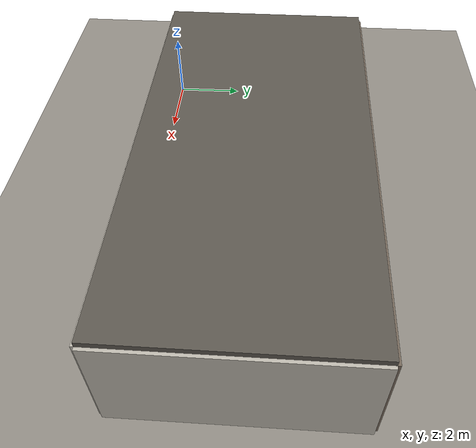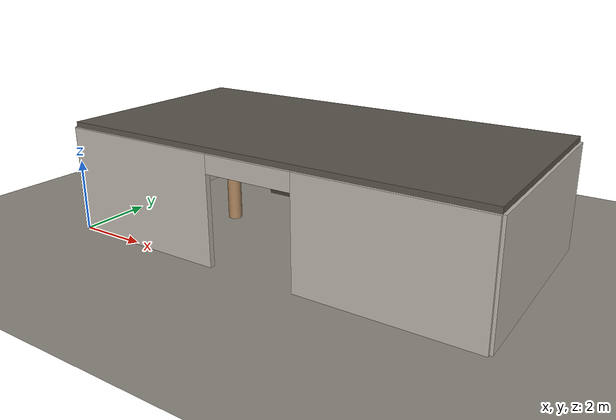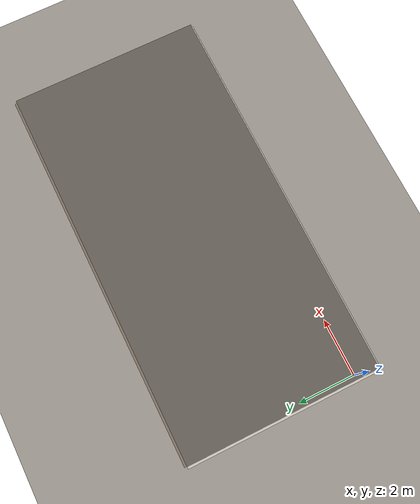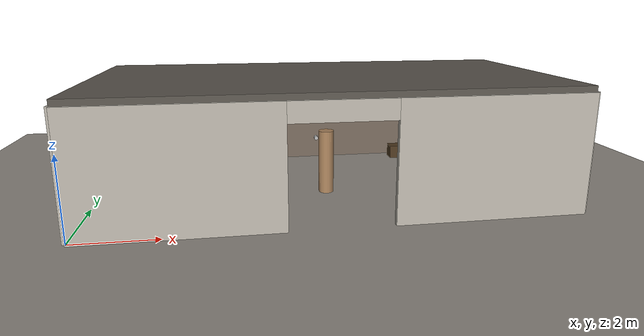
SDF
<?xml version="1.0" ?>
<sdf version="1.9">
  <world name="sherpa_fire_test">

    <!-- ===================== 필수 플러그인 ===================== -->

    <!-- 물리 엔진 -->
    <plugin filename="gz-sim-physics-system"
            name="gz::sim::systems::Physics"/>

    <!-- 사용자 명령 (GUI 드래그, 스폰 등) -->
    <plugin filename="gz-sim-user-commands-system"
            name="gz::sim::systems::UserCommands"/>

    <!-- 씬 브로드캐스터 (ROS 2 bridge용) -->
    <plugin filename="gz-sim-scene-broadcaster-system"
            name="gz::sim::systems::SceneBroadcaster"/>

    <!-- 센서 시스템 (열화상·카메라·라이다) -->
    <plugin filename="gz-sim-sensors-system"
            name="gz::sim::systems::Sensors">
      <render_engine>ogre2</render_engine>
    </plugin>

    <!-- 충돌 감지 -->
    <plugin filename="gz-sim-contact-system"
            name="gz::sim::systems::Contact"/>

    <!-- IMU 시스템 -->
    <plugin filename="gz-sim-imu-system"
            name="gz::sim::systems::Imu"/>

    <!-- 파티클 에미터 시스템 (연기·불꽃 렌더링 필수) -->
    <plugin filename="gz-sim-particle-emitter-system"
            name="gz::sim::systems::ParticleEmitter"/>

    <!-- ===================== 환경 설정 ===================== -->

    <!-- 열화상 카메라 배경 기준 온도 (20°C = 293.15K) -->
    <!-- 이 값보다 높은 온도를 가진 모델이 열화상에 밝게 표시됨 -->
    <atmosphere type="adiabatic">
      <temperature>293.15</temperature>
    </atmosphere>

    <!-- 물리 엔진 설정 -->
    <physics name="default_physics" type="ode">
      <max_step_size>0.002</max_step_size>  <!-- G-2 RTF: was 0.001 -->
      <real_time_factor>1.0</real_time_factor>
      <real_time_update_rate>500</real_time_update_rate>  <!-- G-2 RTF: was 1000 -->
    </physics>

    <!-- ===================== 조명 ===================== -->

    <!-- 디렉셔널 라이트 — 어두운 밀폐 실내 (화재 현장) -->
    <!-- intensity 0.1 수준의 어두운 공간 표현 -->
    <light type="directional" name="dim_ambient">
      <cast_shadows>false</cast_shadows>
      <pose>6 3 10 0 0 0</pose>
      <!-- diffuse 0.10 = 매우 어두운 실내 (요구사항 intensity 0.1) -->
      <diffuse>0.10 0.09 0.08 1</diffuse>
      <specular>0.03 0.03 0.02 1</specular>
      <attenuation>
        <range>1000</range>
        <constant>0.9</constant>
        <linear>0.01</linear>
        <quadratic>0.001</quadratic>
      </attenuation>
      <direction>-0.5 0.1 -0.9</direction>
    </light>

    <!-- 화원A 근처 포인트 라이트 (600°C 화재 주황빛) -->
    <light type="point" name="fire_light_a">
      <cast_shadows>false</cast_shadows>
      <pose>3.0 5.5 1.5 0 0 0</pose>
      <diffuse>1.0 0.5 0.1 1</diffuse>
      <specular>0.8 0.3 0.0 1</specular>
      <attenuation>
        <range>4</range>
        <constant>0.3</constant>
        <linear>0.3</linear>
        <quadratic>0.1</quadratic>
      </attenuation>
    </light>

    <!-- 화원B 근처 포인트 라이트 (900°C 화재 더 밝고 강함) -->
    <light type="point" name="fire_light_b">
      <cast_shadows>false</cast_shadows>
      <pose>9.0 5.5 1.5 0 0 0</pose>
      <diffuse>1.0 0.4 0.05 1</diffuse>
      <specular>0.9 0.25 0.0 1</specular>
      <attenuation>
        <range>6</range>
        <constant>0.2</constant>
        <linear>0.2</linear>
        <quadratic>0.05</quadratic>
      </attenuation>
    </light>

    <!-- ===================== 바닥 (콘크리트 텍스처, 고마찰) ===================== -->

    <model name="ground_plane">
      <static>true</static>
      <link name="link">
        <collision name="collision">
          <geometry>
            <plane>
              <normal>0 0 1</normal>
              <!-- 실험장 전체 + 외부 여유 영역 포함 -->
              <size>25 25</size>
            </plane>
          </geometry>
          <surface>
            <friction>
              <ode>
                <!-- 콘크리트 바닥: 마찰 계수 높음 (μ ≈ 0.8) -->
                <mu>0.8</mu>
                <mu2>0.8</mu2>
              </ode>
            </friction>
          </surface>
        </collision>
        <visual name="visual">
          <geometry>
            <plane>
              <normal>0 0 1</normal>
              <size>25 25</size>
            </plane>
          </geometry>
          <material>
            <!-- 콘크리트 바닥 색상 (회색 계열) -->
            <ambient>0.55 0.53 0.50 1</ambient>
            <diffuse>0.55 0.53 0.50 1</diffuse>
          </material>
        </visual>
      </link>
    </model>

    <!-- ===================== 실험장 외벽 (두께 0.15m, 높이 3m) ===================== -->

    <!--
      남쪽 외벽 (Y=0) — 진입구 포함
      진입구 2.5m (X=4.75~7.25, 중앙 X=6.0)
      좌측 세그먼트: X=0~4.75 → 길이 4.75m, 중심 X=2.375
      우측 세그먼트: X=7.25~12 → 길이 4.75m, 중심 X=9.625
    -->
    <model name="wall_south_left">
      <static>true</static>
      <!-- 중심 X=2.375, Y=0, Z=1.5 (높이 3m의 절반) -->
      <pose>2.375 0 1.5 0 0 0</pose>
      <link name="link">
        <collision name="collision">
          <geometry><box><size>4.75 0.15 3.0</size></box></geometry>
        </collision>
        <visual name="visual">
          <geometry><box><size>4.75 0.15 3.0</size></box></geometry>
          <material>
            <!-- 콘크리트 벽 색상 -->
            <ambient>0.72 0.70 0.66 1</ambient>
            <diffuse>0.72 0.70 0.66 1</diffuse>
          </material>
        </visual>
      </link>
    </model>

    <model name="wall_south_right">
      <static>true</static>
      <!-- 중심 X=9.625, Y=0, Z=1.5 -->
      <pose>9.625 0 1.5 0 0 0</pose>
      <link name="link">
        <collision name="collision">
          <geometry><box><size>4.75 0.15 3.0</size></box></geometry>
        </collision>
        <visual name="visual">
          <geometry><box><size>4.75 0.15 3.0</size></box></geometry>
          <material>
            <ambient>0.72 0.70 0.66 1</ambient>
            <diffuse>0.72 0.70 0.66 1</diffuse>
          </material>
        </visual>
      </link>
    </model>

    <!-- 진입구 상단 상인방 (lintel) — 진입구 위 벽 구조 완성 -->
    <!-- 높이: Z=2.5~3.0 (두께 0.5m), X=4.75~7.25 폭 2.5m -->
    <model name="wall_south_lintel">
      <static>true</static>
      <!-- 중심 X=6.0, Y=0, Z=2.75 (2.5 + 0.25) -->
      <pose>6.0 0 2.75 0 0 0</pose>
      <link name="link">
        <collision name="collision">
          <geometry><box><size>2.5 0.15 0.5</size></box></geometry>
        </collision>
        <visual name="visual">
          <geometry><box><size>2.5 0.15 0.5</size></box></geometry>
          <material>
            <ambient>0.72 0.70 0.66 1</ambient>
            <diffuse>0.72 0.70 0.66 1</diffuse>
          </material>
        </visual>
      </link>
    </model>

    <!-- 북쪽 안쪽 벽 (Y=6) — 화원 부착 벽, 그을음으로 어두운 색상 -->
    <model name="wall_north">
      <static>true</static>
      <!-- 중심 X=6.0, Y=6.0, Z=1.5 -->
      <pose>6.0 6.0 1.5 0 0 0</pose>
      <link name="link">
        <collision name="collision">
          <geometry><box><size>12.0 0.15 3.0</size></box></geometry>
        </collision>
        <visual name="visual">
          <geometry><box><size>12.0 0.15 3.0</size></box></geometry>
          <material>
            <!-- 화재 그을음으로 어두운 북쪽 벽 -->
            <ambient>0.45 0.40 0.35 1</ambient>
            <diffuse>0.45 0.40 0.35 1</diffuse>
          </material>
        </visual>
      </link>
    </model>

    <!-- 서쪽 벽 (X=0) -->
    <model name="wall_west">
      <static>true</static>
      <!-- 중심 X=0, Y=3.0, Z=1.5 -->
      <pose>0 3.0 1.5 0 0 0</pose>
      <link name="link">
        <collision name="collision">
          <geometry><box><size>0.15 6.0 3.0</size></box></geometry>
        </collision>
        <visual name="visual">
          <geometry><box><size>0.15 6.0 3.0</size></box></geometry>
          <material>
            <ambient>0.72 0.70 0.66 1</ambient>
            <diffuse>0.72 0.70 0.66 1</diffuse>
          </material>
        </visual>
      </link>
    </model>

    <!-- 동쪽 벽 (X=12) -->
    <model name="wall_east">
      <static>true</static>
      <!-- 중심 X=12.0, Y=3.0, Z=1.5 -->
      <pose>12.0 3.0 1.5 0 0 0</pose>
      <link name="link">
        <collision name="collision">
          <geometry><box><size>0.15 6.0 3.0</size></box></geometry>
        </collision>
        <visual name="visual">
          <geometry><box><size>0.15 6.0 3.0</size></box></geometry>
          <material>
            <ambient>0.72 0.70 0.66 1</ambient>
            <diffuse>0.72 0.70 0.66 1</diffuse>
          </material>
        </visual>
      </link>
    </model>

    <!-- 천장 — 밀폐 공간 완성 (충돌 없이 시각 전용) -->
    <model name="ceiling">
      <static>true</static>
      <!-- 중심 X=6.0, Y=3.0, Z=3.075 (높이 3m 위, 두께 0.15m) -->
      <pose>6.0 3.0 3.075 0 0 0</pose>
      <link name="link">
        <!-- 천장은 시각 전용 (센서가 천장 통과해야 할 때를 대비) -->
        <visual name="visual">
          <geometry><box><size>12.0 6.0 0.15</size></box></geometry>
          <material>
            <!-- 그을린 천장 -->
            <ambient>0.35 0.33 0.30 1</ambient>
            <diffuse>0.35 0.33 0.30 1</diffuse>
          </material>
        </visual>
      </link>
    </model>

    <!-- ===================== 화원 모델 (안쪽 벽면 부착) ===================== -->

    <!--
      fire_source_a — 폴리우레탄 폼/스티로폼+고무 화재 (좌측)
      위치: 북쪽 벽면(Y≈5.8), 실험장 좌측 (X=3.0)
      온도: 873.15K (600°C) — 초기~성장기 화재
      시각: 빨간-주황 박스 0.4×0.4×0.3m
    -->
    <model name="fire_source_a">
      <static>true</static>
      <pose>3.0 5.8 0.15 0 0 0</pose>
      <link name="link">
        <collision name="collision">
          <geometry><box><size>0.4 0.3 0.3</size></box></geometry>
        </collision>
        <visual name="visual">
          <geometry>
            <box><size>0.4 0.3 0.3</size></box>
          </geometry>
          <material>
            <!-- 빨간-주황 화점 (600°C) -->
            <ambient>1.0 0.10 0.02 1</ambient>
            <diffuse>1.0 0.10 0.02 1</diffuse>
            <emissive>0.8 0.05 0.0 1</emissive>
          </material>
        </visual>
      </link>
      <!-- 열화상 카메라에 600°C = 873.15K 시그니처 출력 -->
      <plugin filename="gz-sim-thermal-system"
              name="gz::sim::systems::Thermal">
        <temperature>873.15</temperature>
      </plugin>
    </model>

    <!--
      fire_source_b — 목재(소나무)/복합 화재 (우측)
      위치: 북쪽 벽면(Y≈5.8), 실험장 우측 (X=9.0)
      온도: 1173.15K (900°C) — 성장기·최성기 화재
      시각: 더 강한 주황 박스 0.4×0.4×0.3m
    -->
    <model name="fire_source_b">
      <static>true</static>
      <pose>9.0 5.8 0.15 0 0 0</pose>
      <link name="link">
        <collision name="collision">
          <geometry><box><size>0.4 0.3 0.3</size></box></geometry>
        </collision>
        <visual name="visual">
          <geometry>
            <box><size>0.4 0.3 0.3</size></box>
          </geometry>
          <material>
            <!-- 더 강한 주황-노랑 불꽃 (900°C) -->
            <ambient>1.0 0.15 0.0 1</ambient>
            <diffuse>1.0 0.15 0.0 1</diffuse>
            <emissive>1.0 0.08 0.0 1</emissive>
          </material>
        </visual>
      </link>
      <!-- 열화상 카메라에 900°C = 1173.15K 시그니처 출력 -->
      <plugin filename="gz-sim-thermal-system"
              name="gz::sim::systems::Thermal">
        <temperature>1173.15</temperature>
      </plugin>
    </model>

    <!-- ===================== 연기 파티클 (화원 A) ===================== -->

    <!--
      smoke_a — 화원A 연기 (폴리우레탄/스티로폼 — 짙고 검은 연기)
      pitch=-1.5708: +X 기본 분출 방향 → +Z(위) 전환
      particle_scatter_ratio: 감광식 연기농도계 시뮬레이션 (0.75)
    -->
    <model name="smoke_a">
      <static>true</static>
      <pose>3.0 5.8 0.35 0 -1.5708 0</pose>
      <link name="smoke_link">
        <particle_emitter name="smoke_emitter_a" type="box">
          <emitting>true</emitting>
          <!-- 화원 크기에 맞는 발생 영역 -->
          <size>0.35 0.25 0</size>
          <!-- 개별 파티클 크기 (연기 덩어리) -->
          <particle_size>0.45 0.45 0.45</particle_size>
          <!-- 초당 파티클 수 -->
          <rate>15</rate>  <!-- G-2 RTF: was 30 -->
          <!-- 파티클 수명 (초) -->
          <lifetime>2.68</lifetime>  <!-- G-2 RTF: was 4 -->
          <!-- 상승 속도 (밀폐 공간: 천천히 축적) -->
          <min_velocity>0.3</min_velocity>
          <max_velocity>0.7</max_velocity>
          <!-- 연기가 퍼지는 효과 -->
          <scale_rate>1.0</scale_rate>
          <!-- 회색 연기 (폴리우레탄은 실제 검지만, 회색으로 표현) -->
          <material>
            <diffuse>0.4 0.4 0.4 0.8</diffuse>
            <specular>0.2 0.2 0.2 0.5</specular>
          </material>
          <!-- 라이다 산란 비율: 감광식 연기농도계 효과 시뮬레이션 -->
          <particle_scatter_ratio>0.75</particle_scatter_ratio>
        </particle_emitter>
      </link>
    </model>

    <!--
      flame_a — 화원A 불꽃 파티클 (주황-빨강, 600°C)
    -->
    <model name="flame_a">
      <static>true</static>
      <pose>3.0 5.8 0.28 0 -1.5708 0</pose>
      <link name="flame_link">
        <particle_emitter name="flame_emitter_a" type="box">
          <emitting>true</emitting>
          <size>0.30 0.25 0</size>
          <particle_size>0.18 0.18 0.18</particle_size>
          <rate>15</rate>  <!-- G-2 RTF: was 30 -->
          <!-- 불꽃은 짧게 소멸 -->
          <lifetime>0.60</lifetime>  <!-- G-2 RTF: was 0.9 -->
          <min_velocity>0.5</min_velocity>
          <max_velocity>1.1</max_velocity>
          <scale_rate>0.25</scale_rate>
          <!-- 주황-빨강 불꽃 (600°C) -->
          <material>
            <diffuse>1.0 0.4 0.05 0.9</diffuse>
            <specular>1.0 0.6 0.1 0.8</specular>
          </material>
          <!-- 불꽃은 센서 영향 최소화 -->
          <particle_scatter_ratio>0.1</particle_scatter_ratio>
        </particle_emitter>
      </link>
    </model>

    <!-- ===================== 연기 파티클 (화원 B) ===================== -->

    <!--
      smoke_b — 화원B 연기 (목재/복합 — 더 많고 짙음)
      rate=50, lifetime=6 — 목재 화재 대량 연기
    -->
    <model name="smoke_b">
      <static>true</static>
      <pose>9.0 5.8 0.35 0 -1.5708 0</pose>
      <link name="smoke_link">
        <particle_emitter name="smoke_emitter_b" type="box">
          <emitting>true</emitting>
          <size>0.40 0.30 0</size>
          <!-- 대형 화재: 파티클 크기 크게 -->
          <particle_size>0.60 0.60 0.60</particle_size>
          <!-- 목재 화재: 발생률 높음 -->
          <rate>25</rate>  <!-- G-2 RTF: was 50 -->
          <!-- 목재 화재: 수명 길게 (밀폐 공간에서 연기 축적) -->
          <lifetime>4.02</lifetime>  <!-- G-2 RTF: was 6 -->
          <min_velocity>0.4</min_velocity>
          <max_velocity>1.0</max_velocity>
          <!-- 빠르게 퍼지는 연기 -->
          <scale_rate>1.3</scale_rate>
          <!-- 짙은 회색 연기 -->
          <material>
            <diffuse>0.4 0.4 0.4 0.8</diffuse>
            <specular>0.15 0.15 0.15 0.6</specular>
          </material>
          <!-- 라이다 산란 높게 (짙은 연기, 감광식 연기농도계 효과) -->
          <particle_scatter_ratio>0.85</particle_scatter_ratio>
        </particle_emitter>
      </link>
    </model>

    <!--
      flame_b — 화원B 불꽃 파티클 (주황-노랑, 900°C, 더 강함)
    -->
    <model name="flame_b">
      <static>true</static>
      <pose>9.0 5.8 0.28 0 -1.5708 0</pose>
      <link name="flame_link">
        <particle_emitter name="flame_emitter_b" type="box">
          <emitting>true</emitting>
          <size>0.38 0.30 0</size>
          <particle_size>0.28 0.28 0.28</particle_size>
          <!-- 대형 화재: 불꽃 발생률 높음 -->
          <rate>30</rate>  <!-- G-2 RTF: was 60 -->
          <lifetime>0.87</lifetime>  <!-- G-2 RTF: was 1.3 -->
          <min_velocity>0.7</min_velocity>
          <max_velocity>2.2</max_velocity>
          <scale_rate>0.40</scale_rate>
          <!-- 주황-노랑 불꽃 (900°C 고온) -->
          <material>
            <diffuse>1.0 0.55 0.0 0.95</diffuse>
            <specular>1.0 0.80 0.2 0.9</specular>
          </material>
          <particle_scatter_ratio>0.1</particle_scatter_ratio>
        </particle_emitter>
      </link>
    </model>

    <!-- ===================== 마네킹 3체 (구조대상자) ===================== -->

    <!--
      마네킹 1 — 실험장 중앙 좌측
      실린더로 인체 근사: 반지름 0.2m, 높이 1.7m
      온도: 310.15K (37°C) — 체온 기준, 열화상 탐지 대상
      위치: (3.0, 3.0) — 화원A에서 2.8m 전방
    -->
    <model name="mannequin_1">
      <static>true</static>
      <!-- Z=0.85: 실린더 높이 1.7m의 절반 (바닥에서 중심까지) -->
      <pose>3.0 3.0 0.85 0 0 0</pose>
      <link name="link">
        <collision name="collision">
          <geometry>
            <cylinder>
              <radius>0.2</radius>
              <length>1.7</length>
            </cylinder>
          </geometry>
        </collision>
        <visual name="visual">
          <geometry>
            <cylinder>
              <radius>0.2</radius>
              <length>1.7</length>
            </cylinder>
          </geometry>
          <material>
            <!-- 마네킹 색상: 사람 피부/의복 근사 (베이지-갈색) -->
            <ambient>0.65 0.50 0.35 1</ambient>
            <diffuse>0.65 0.50 0.35 1</diffuse>
          </material>
        </visual>
      </link>
      <!-- 열화상 카메라에 37°C = 310.15K 체온 시그니처 출력 -->
      <plugin filename="gz-sim-thermal-system"
              name="gz::sim::systems::Thermal">
        <temperature>310.15</temperature>
      </plugin>
    </model>

    <!--
      마네킹 2 — 실험장 중앙
      위치: (6.0, 2.5) — 진입로 중심선
    -->
    <model name="mannequin_2">
      <static>true</static>
      <pose>6.0 2.5 0.85 0 0 0</pose>
      <link name="link">
        <collision name="collision">
          <geometry>
            <cylinder>
              <radius>0.2</radius>
              <length>1.7</length>
            </cylinder>
          </geometry>
        </collision>
        <visual name="visual">
          <geometry>
            <cylinder>
              <radius>0.2</radius>
              <length>1.7</length>
            </cylinder>
          </geometry>
          <material>
            <ambient>0.65 0.50 0.35 1</ambient>
            <diffuse>0.65 0.50 0.35 1</diffuse>
          </material>
        </visual>
      </link>
      <plugin filename="gz-sim-thermal-system"
              name="gz::sim::systems::Thermal">
        <temperature>310.15</temperature>
      </plugin>
    </model>

    <!--
      마네킹 3 — 실험장 중앙 우측
      위치: (9.0, 3.0) — 화원B에서 2.8m 전방
    -->
    <model name="mannequin_3">
      <static>true</static>
      <pose>9.0 3.0 0.85 0 0 0</pose>
      <link name="link">
        <collision name="collision">
          <geometry>
            <cylinder>
              <radius>0.2</radius>
              <length>1.7</length>
            </cylinder>
          </geometry>
        </collision>
        <visual name="visual">
          <geometry>
            <cylinder>
              <radius>0.2</radius>
              <length>1.7</length>
            </cylinder>
          </geometry>
          <material>
            <ambient>0.65 0.50 0.35 1</ambient>
            <diffuse>0.65 0.50 0.35 1</diffuse>
          </material>
        </visual>
      </link>
      <plugin filename="gz-sim-thermal-system"
              name="gz::sim::systems::Thermal">
        <temperature>310.15</temperature>
      </plugin>
    </model>

    <!-- ===================== 관측 장비 표식 ===================== -->

    <!--
      감광식 연기농도계 — 실험장 중앙 상단 (천장 부근)
      좌표: (6.0, 3.0, 2.7) — 연기가 천장에 축적되는 위치
      시각: 작은 흰 박스 (실제 센서 기기)
    -->
    <model name="smoke_detector">
      <static>true</static>
      <pose>6.0 3.0 2.7 0 0 0</pose>
      <link name="link">
        <visual name="visual">
          <geometry><box><size>0.15 0.15 0.08</size></box></geometry>
          <material>
            <ambient>0.9 0.9 0.9 1</ambient>
            <diffuse>0.9 0.9 0.9 1</diffuse>
          </material>
        </visual>
      </link>
    </model>

    <!--
      열유속계 (복사열) — 화원 정면 중간 위치 (1m 높이)
      좌표: (6.0, 4.5, 1.0) — 두 화원 사이 정면
      시각: 작은 은색 원통
    -->
    <model name="heat_flux_meter">
      <static>true</static>
      <pose>6.0 4.5 1.0 1.5708 0 0</pose>
      <link name="link">
        <visual name="visual">
          <geometry>
            <cylinder>
              <radius>0.06</radius>
              <length>0.12</length>
            </cylinder>
          </geometry>
          <material>
            <ambient>0.70 0.70 0.70 1</ambient>
            <diffuse>0.70 0.70 0.70 1</diffuse>
          </material>
        </visual>
      </link>
    </model>

    <!-- ===================== 가연물 더미 (화원 주변) ===================== -->

    <!--
      연료 더미 A — 화원A 옆 (폴리우레탄 폼 근사)
      실제 화재 실험 시 화원 주변에 적치된 가연물
    -->
    <model name="fuel_pile_a">
      <static>true</static>
      <pose>3.0 5.5 0.2 0 0 0</pose>
      <link name="link">
        <collision name="collision">
          <geometry><box><size>0.8 0.4 0.4</size></box></geometry>
        </collision>
        <visual name="visual">
          <geometry><box><size>0.8 0.4 0.4</size></box></geometry>
          <material>
            <!-- 그을린 스티로폼/고무 색상 -->
            <ambient>0.25 0.22 0.18 1</ambient>
            <diffuse>0.25 0.22 0.18 1</diffuse>
          </material>
        </visual>
      </link>
      <!-- 가연물 온도: 화재 복사열로 예열된 상태 (200°C = 473.15K) -->
      <plugin filename="gz-sim-thermal-system"
              name="gz::sim::systems::Thermal">
        <temperature>473.15</temperature>
      </plugin>
    </model>

    <!--
      연료 더미 B — 화원B 옆 (목재/복합 가연물 근사)
    -->
    <model name="fuel_pile_b">
      <static>true</static>
      <pose>9.0 5.5 0.2 0 0 0</pose>
      <link name="link">
        <collision name="collision">
          <geometry><box><size>0.8 0.4 0.4</size></box></geometry>
        </collision>
        <visual name="visual">
          <geometry><box><size>0.8 0.4 0.4</size></box></geometry>
          <material>
            <!-- 목재 색상 (탄화 진행 중) -->
            <ambient>0.30 0.22 0.12 1</ambient>
            <diffuse>0.30 0.22 0.12 1</diffuse>
          </material>
        </visual>
      </link>
      <!-- 목재 화재 복사열: 250°C = 523.15K -->
      <plugin filename="gz-sim-thermal-system"
              name="gz::sim::systems::Thermal">
        <temperature>523.15</temperature>
      </plugin>
    </model>

  </world>
</sdf>
